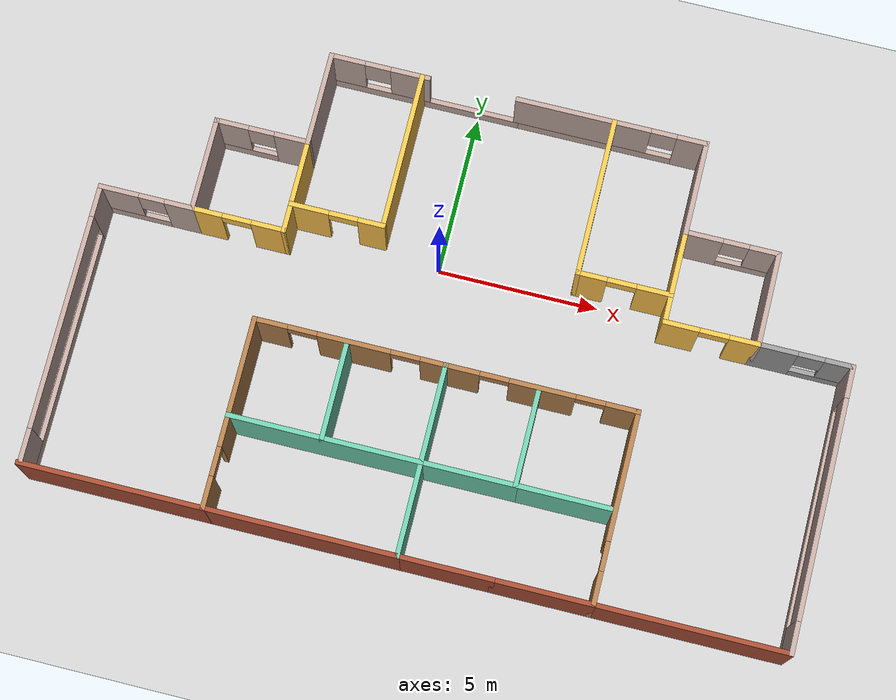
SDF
<sdf version="1.6">
 <world name="default">
  <model name="ground_plane">
   <static>1</static>
   <link name="link">
    <collision name="collision">
     <geometry><plane><normal>0 0 1</normal><size>100 100</size></plane></geometry>
     <surface><friction><ode><mu>100</mu><mu2>50</mu2></ode></friction></surface>
    </collision>
    <visual name="visual">
     <cast_shadows>0</cast_shadows>
     <geometry><plane><normal>0 0 1</normal><size>100 100</size></plane></geometry>
     <material>
      <script><uri>file://media/materials/scripts/gazebo.material</uri><name>Gazebo/Grey</name></script>
     </material>
    </visual>
   </link>
  </model>
  <model name="model">
   <pose>1.15631 -2.02107 0 0 -0 0</pose>
   <link name="Wall_11">
    <pose>2.95 7.2 0 0 -0 3.14159</pose>
    <visual name="Wall_11_Visual_0">
     <pose>-2.50774 0 1.25 0 -0 0</pose>
     <geometry><box><size>0.98451 0.15 2.5</size></box></geometry>
     <material>
      <script><uri>file://media/materials/scripts/gazebo.material</uri><name>Gazebo/Grey</name></script>
      <ambient>0.760784 0.662745 0.627451 1</ambient>
     </material>
     <meta><layer>0</layer></meta>
    </visual>
    <collision name="Wall_11_Collision_0">
     <geometry><box><size>0.98451 0.15 2.5</size></box></geometry>
     <pose>-2.50774 0 1.25 0 -0 0</pose>
    </collision>
    <visual name="Wall_11_Visual_1">
     <pose>0.492255 0 0.25 0 -0 0</pose>
     <geometry><box><size>5.01549 0.15 0.5</size></box></geometry>
     <material>
      <script><uri>file://media/materials/scripts/gazebo.material</uri><name>Gazebo/Grey</name></script>
      <ambient>0.760784 0.662745 0.627451 1</ambient>
     </material>
     <meta><layer>0</layer></meta>
    </visual>
    <collision name="Wall_11_Collision_1">
     <geometry><box><size>5.01549 0.15 0.5</size></box></geometry>
     <pose>0.492255 0 0.25 0 -0 0</pose>
    </collision>
    <visual name="Wall_11_Visual_2">
     <pose>0.892255 0 1.5 0 -0 0</pose>
     <geometry><box><size>4.21549 0.15 2</size></box></geometry>
     <material>
      <script><uri>file://media/materials/scripts/gazebo.material</uri><name>Gazebo/Grey</name></script>
      <ambient>0.760784 0.662745 0.627451 1</ambient>
     </material>
     <meta><layer>0</layer></meta>
    </visual>
    <collision name="Wall_11_Collision_2">
     <geometry><box><size>4.21549 0.15 2</size></box></geometry>
     <pose>0.892255 0 1.5 0 -0 0</pose>
    </collision>
    <visual name="Wall_11_Visual_3">
     <pose>-1.61549 0 1.9 0 -0 0</pose>
     <geometry><box><size>0.8 0.15 1.2</size></box></geometry>
     <material>
      <script><uri>file://media/materials/scripts/gazebo.material</uri><name>Gazebo/Grey</name></script>
      <ambient>0.760784 0.662745 0.627451 1</ambient>
     </material>
     <meta><layer>0</layer></meta>
    </visual>
    <collision name="Wall_11_Collision_3">
     <geometry><box><size>0.8 0.15 1.2</size></box></geometry>
     <pose>-1.61549 0 1.9 0 -0 0</pose>
    </collision>
   </link>
   <link name="Wall_16">
    <collision name="Wall_16_Collision">
     <geometry><box><size>3 0.15 2.5</size></box></geometry>
     <pose>0 0 1.25 0 -0 0</pose>
    </collision>
    <visual name="Wall_16_Visual">
     <pose>0 0 1.25 0 -0 0</pose>
     <geometry><box><size>3 0.15 2.5</size></box></geometry>
     <material>
      <script><uri>file://media/materials/scripts/gazebo.material</uri><name>Gazebo/Grey</name></script>
      <ambient>0.760784 0.662745 0.627451 1</ambient>
     </material>
     <meta><layer>0</layer></meta>
    </visual>
    <pose>5.875 5.775 0 0 -0 -1.5708</pose>
   </link>
   <link name="Wall_17">
    <pose>7.3 4.35 0 0 -0 0</pose>
    <visual name="Wall_17_Visual_0">
     <pose>-0.888143 0 1.25 0 -0 0</pose>
     <geometry><box><size>1.22371 0.15 2.5</size></box></geometry>
     <material>
      <script><uri>file://media/materials/scripts/gazebo.material</uri><name>Gazebo/Grey</name></script>
      <ambient>0.760784 0.662745 0.627451 1</ambient>
     </material>
     <meta><layer>0</layer></meta>
    </visual>
    <collision name="Wall_17_Collision_0">
     <geometry><box><size>1.22371 0.15 2.5</size></box></geometry>
     <pose>-0.888143 0 1.25 0 -0 0</pose>
    </collision>
    <visual name="Wall_17_Visual_1">
     <pose>0.611857 0 0.25 0 -0 0</pose>
     <geometry><box><size>1.77629 0.15 0.5</size></box></geometry>
     <material>
      <script><uri>file://media/materials/scripts/gazebo.material</uri><name>Gazebo/Grey</name></script>
      <ambient>0.760784 0.662745 0.627451 1</ambient>
     </material>
     <meta><layer>0</layer></meta>
    </visual>
    <collision name="Wall_17_Collision_1">
     <geometry><box><size>1.77629 0.15 0.5</size></box></geometry>
     <pose>0.611857 0 0.25 0 -0 0</pose>
    </collision>
    <visual name="Wall_17_Visual_2">
     <pose>1.01186 0 1.5 0 -0 0</pose>
     <geometry><box><size>0.976287 0.15 2</size></box></geometry>
     <material>
      <script><uri>file://media/materials/scripts/gazebo.material</uri><name>Gazebo/Grey</name></script>
      <ambient>0.760784 0.662745 0.627451 1</ambient>
     </material>
     <meta><layer>0</layer></meta>
    </visual>
    <collision name="Wall_17_Collision_2">
     <geometry><box><size>0.976287 0.15 2</size></box></geometry>
     <pose>1.01186 0 1.5 0 -0 0</pose>
    </collision>
    <visual name="Wall_17_Visual_3">
     <pose>0.123713 0 1.9 0 -0 0</pose>
     <geometry><box><size>0.8 0.15 1.2</size></box></geometry>
     <material>
      <script><uri>file://media/materials/scripts/gazebo.material</uri><name>Gazebo/Grey</name></script>
      <ambient>0.760784 0.662745 0.627451 1</ambient>
     </material>
     <meta><layer>0</layer></meta>
    </visual>
    <collision name="Wall_17_Collision_3">
     <geometry><box><size>0.8 0.15 1.2</size></box></geometry>
     <pose>0.123713 0 1.9 0 -0 0</pose>
    </collision>
   </link>
   <link name="Wall_18">
    <collision name="Wall_18_Collision">
     <geometry><box><size>3 0.15 2.5</size></box></geometry>
     <pose>0 0 1.25 0 -0 0</pose>
    </collision>
    <visual name="Wall_18_Visual">
     <pose>0 0 1.25 0 -0 0</pose>
     <geometry><box><size>3 0.15 2.5</size></box></geometry>
     <material>
      <script><uri>file://media/materials/scripts/gazebo.material</uri><name>Gazebo/Grey</name></script>
      <ambient>0.760784 0.662745 0.627451 1</ambient>
     </material>
     <meta><layer>0</layer></meta>
    </visual>
    <pose>8.725 2.925 0 0 -0 -1.5708</pose>
   </link>
   <link name="Wall_19">
    <pose>10.15 1.5 0 0 -0 0</pose>
    <visual name="Wall_19_Visual_0">
     <pose>-0.863411 0 1.25 0 -0 0</pose>
     <geometry><box><size>1.27318 0.15 2.5</size></box></geometry>
     <material>
      <script><uri>file://media/materials/scripts/gazebo.material</uri><name>Gazebo/Grey</name></script>
      <ambient>1 1 1 1</ambient>
     </material>
     <meta><layer>0</layer></meta>
    </visual>
    <collision name="Wall_19_Collision_0">
     <geometry><box><size>1.27318 0.15 2.5</size></box></geometry>
     <pose>-0.863411 0 1.25 0 -0 0</pose>
    </collision>
    <visual name="Wall_19_Visual_1">
     <pose>0.636589 0 0.25 0 -0 0</pose>
     <geometry><box><size>1.72682 0.15 0.5</size></box></geometry>
     <material>
      <script><uri>file://media/materials/scripts/gazebo.material</uri><name>Gazebo/Grey</name></script>
      <ambient>1 1 1 1</ambient>
     </material>
     <meta><layer>0</layer></meta>
    </visual>
    <collision name="Wall_19_Collision_1">
     <geometry><box><size>1.72682 0.15 0.5</size></box></geometry>
     <pose>0.636589 0 0.25 0 -0 0</pose>
    </collision>
    <visual name="Wall_19_Visual_2">
     <pose>1.03659 0 1.5 0 -0 0</pose>
     <geometry><box><size>0.926822 0.15 2</size></box></geometry>
     <material>
      <script><uri>file://media/materials/scripts/gazebo.material</uri><name>Gazebo/Grey</name></script>
      <ambient>1 1 1 1</ambient>
     </material>
     <meta><layer>0</layer></meta>
    </visual>
    <collision name="Wall_19_Collision_2">
     <geometry><box><size>0.926822 0.15 2</size></box></geometry>
     <pose>1.03659 0 1.5 0 -0 0</pose>
    </collision>
    <visual name="Wall_19_Visual_3">
     <pose>0.173178 0 1.9 0 -0 0</pose>
     <geometry><box><size>0.8 0.15 1.2</size></box></geometry>
     <material>
      <script><uri>file://media/materials/scripts/gazebo.material</uri><name>Gazebo/Grey</name></script>
      <ambient>1 1 1 1</ambient>
     </material>
     <meta><layer>0</layer></meta>
    </visual>
    <collision name="Wall_19_Collision_3">
     <geometry><box><size>0.8 0.15 1.2</size></box></geometry>
     <pose>0.173178 0 1.9 0 -0 0</pose>
    </collision>
   </link>
   <link name="Wall_21">
    <collision name="Wall_21_Collision">
     <geometry><box><size>3 0.15 2.5</size></box></geometry>
     <pose>0 0 1.25 0 -0 0</pose>
    </collision>
    <visual name="Wall_21_Visual">
     <pose>0 0 1.25 0 -0 0</pose>
     <geometry><box><size>3 0.15 2.5</size></box></geometry>
     <material>
      <script><uri>file://media/materials/scripts/gazebo.material</uri><name>Gazebo/Grey</name></script>
      <ambient>1 0.764706 0.305882 1</ambient>
     </material>
     <meta><layer>0</layer></meta>
    </visual>
    <pose>5.875 2.925 0 0 -0 -1.5708</pose>
   </link>
   <link name="Wall_22">
    <pose>7.3 1.5 0 0 -0 0</pose>
    <visual name="Wall_22_Visual_0">
     <pose>-0.931281 0 1.25 0 -0 0</pose>
     <geometry><box><size>1.13744 0.15 2.5</size></box></geometry>
     <material>
      <script><uri>file://media/materials/scripts/gazebo.material</uri><name>Gazebo/Grey</name></script>
      <ambient>1 0.764706 0.305882 1</ambient>
     </material>
     <meta><layer>0</layer></meta>
    </visual>
    <collision name="Wall_22_Collision_0">
     <geometry><box><size>1.13744 0.15 2.5</size></box></geometry>
     <pose>-0.931281 0 1.25 0 -0 0</pose>
    </collision>
    <visual name="Wall_22_Visual_1">
     <pose>1.01872 0 1.25 0 -0 0</pose>
     <geometry><box><size>0.962562 0.15 2.5</size></box></geometry>
     <material>
      <script><uri>file://media/materials/scripts/gazebo.material</uri><name>Gazebo/Grey</name></script>
      <ambient>1 0.764706 0.305882 1</ambient>
     </material>
     <meta><layer>0</layer></meta>
    </visual>
    <collision name="Wall_22_Collision_1">
     <geometry><box><size>0.962562 0.15 2.5</size></box></geometry>
     <pose>1.01872 0 1.25 0 -0 0</pose>
    </collision>
    <visual name="Wall_22_Visual_2">
     <pose>0.087438 0 2.25 0 -0 0</pose>
     <geometry><box><size>0.9 0.15 0.5</size></box></geometry>
     <material>
      <script><uri>file://media/materials/scripts/gazebo.material</uri><name>Gazebo/Grey</name></script>
      <ambient>1 0.764706 0.305882 1</ambient>
     </material>
     <meta><layer>0</layer></meta>
    </visual>
    <collision name="Wall_22_Collision_2">
     <geometry><box><size>0.9 0.15 0.5</size></box></geometry>
     <pose>0.087438 0 2.25 0 -0 0</pose>
    </collision>
   </link>
   <link name="Wall_25">
    <collision name="Wall_25_Collision">
     <geometry><box><size>5 0.15 2.5</size></box></geometry>
     <pose>0 0 1.25 0 -0 0</pose>
    </collision>
    <visual name="Wall_25_Visual">
     <pose>0 0 1.25 0 -0 0</pose>
     <geometry><box><size>5 0.15 2.5</size></box></geometry>
     <material>
      <script><uri>file://media/materials/scripts/gazebo.material</uri><name>Gazebo/Grey</name></script>
      <ambient>1 0.764706 0.305882 1</ambient>
     </material>
     <meta><layer>0</layer></meta>
    </visual>
    <pose>3.025 4.775 0 0 -0 -1.5708</pose>
   </link>
   <link name="Wall_26">
    <pose>4.45 2.35 0 0 -0 0</pose>
    <visual name="Wall_26_Visual_0">
     <pose>-1.01278 0 1.25 0 -0 0</pose>
     <geometry><box><size>0.974438 0.15 2.5</size></box></geometry>
     <material>
      <script><uri>file://media/materials/scripts/gazebo.material</uri><name>Gazebo/Grey</name></script>
      <ambient>1 0.764706 0.305882 1</ambient>
     </material>
     <meta><layer>0</layer></meta>
    </visual>
    <collision name="Wall_26_Collision_0">
     <geometry><box><size>0.974438 0.15 2.5</size></box></geometry>
     <pose>-1.01278 0 1.25 0 -0 0</pose>
    </collision>
    <visual name="Wall_26_Visual_1">
     <pose>0.937219 0 1.25 0 -0 0</pose>
     <geometry><box><size>1.12556 0.15 2.5</size></box></geometry>
     <material>
      <script><uri>file://media/materials/scripts/gazebo.material</uri><name>Gazebo/Grey</name></script>
      <ambient>1 0.764706 0.305882 1</ambient>
     </material>
     <meta><layer>0</layer></meta>
    </visual>
    <collision name="Wall_26_Collision_1">
     <geometry><box><size>1.12556 0.15 2.5</size></box></geometry>
     <pose>0.937219 0 1.25 0 -0 0</pose>
    </collision>
    <visual name="Wall_26_Visual_2">
     <pose>-0.075562 0 2.25 0 -0 0</pose>
     <geometry><box><size>0.9 0.15 0.5</size></box></geometry>
     <material>
      <script><uri>file://media/materials/scripts/gazebo.material</uri><name>Gazebo/Grey</name></script>
      <ambient>1 0.764706 0.305882 1</ambient>
     </material>
     <meta><layer>0</layer></meta>
    </visual>
    <collision name="Wall_26_Collision_2">
     <geometry><box><size>0.9 0.15 0.5</size></box></geometry>
     <pose>-0.075562 0 2.25 0 -0 0</pose>
    </collision>
   </link>
   <link name="Wall_32">
    <collision name="Wall_32_Collision">
     <geometry><box><size>6 0.15 2.5</size></box></geometry>
     <pose>0 0 1.25 0 -0 0</pose>
    </collision>
    <visual name="Wall_32_Visual">
     <pose>0 0 1.25 0 -0 0</pose>
     <geometry><box><size>6 0.15 2.5</size></box></geometry>
     <material>
      <script><uri>file://media/materials/scripts/gazebo.material</uri><name>Gazebo/Bricks</name></script>
      <ambient>1 1 1 1</ambient>
     </material>
     <meta><layer>0</layer></meta>
    </visual>
    <pose>8.65 -7.2 0 0 -0 3.14159</pose>
   </link>
   <link name="Wall_34">
    <pose>5.725 -4.275 0 0 -0 1.5708</pose>
    <visual name="Wall_34_Visual_0">
     <pose>-2.46394 0 1.25 0 -0 0</pose>
     <geometry><box><size>1.07212 0.15 2.5</size></box></geometry>
     <material>
      <script><uri>file://media/materials/scripts/gazebo.material</uri><name>Gazebo/Wood</name></script>
      <ambient>1 1 1 1</ambient>
     </material>
     <meta><layer>0</layer></meta>
    </visual>
    <collision name="Wall_34_Collision_0">
     <geometry><box><size>1.07212 0.15 2.5</size></box></geometry>
     <pose>-2.46394 0 1.25 0 -0 0</pose>
    </collision>
    <visual name="Wall_34_Visual_1">
     <pose>0.986061 0 1.25 0 -0 0</pose>
     <geometry><box><size>4.02788 0.15 2.5</size></box></geometry>
     <material>
      <script><uri>file://media/materials/scripts/gazebo.material</uri><name>Gazebo/Wood</name></script>
      <ambient>1 1 1 1</ambient>
     </material>
     <meta><layer>0</layer></meta>
    </visual>
    <collision name="Wall_34_Collision_1">
     <geometry><box><size>4.02788 0.15 2.5</size></box></geometry>
     <pose>0.986061 0 1.25 0 -0 0</pose>
    </collision>
    <visual name="Wall_34_Visual_2">
     <pose>-1.47788 0 2.25 0 -0 0</pose>
     <geometry><box><size>0.9 0.15 0.5</size></box></geometry>
     <material>
      <script><uri>file://media/materials/scripts/gazebo.material</uri><name>Gazebo/Wood</name></script>
      <ambient>1 1 1 1</ambient>
     </material>
     <meta><layer>0</layer></meta>
    </visual>
    <collision name="Wall_34_Collision_2">
     <geometry><box><size>0.9 0.15 0.5</size></box></geometry>
     <pose>-1.47788 0 2.25 0 -0 0</pose>
    </collision>
   </link>
   <link name="Wall_35">
    <pose>2.8 -1.35 0 0 -0 3.14159</pose>
    <visual name="Wall_35_Visual_0">
     <pose>-2.46622 0 1.25 0 -0 0</pose>
     <geometry><box><size>1.06756 0.15 2.5</size></box></geometry>
     <material>
      <script><uri>file://media/materials/scripts/gazebo.material</uri><name>Gazebo/Wood</name></script>
      <ambient>1 1 1 1</ambient>
     </material>
     <meta><layer>0</layer></meta>
    </visual>
    <collision name="Wall_35_Collision_0">
     <geometry><box><size>1.06756 0.15 2.5</size></box></geometry>
     <pose>-2.46622 0 1.25 0 -0 0</pose>
    </collision>
    <visual name="Wall_35_Visual_1">
     <pose>-0.021938 0 1.25 0 -0 0</pose>
     <geometry><box><size>2.021 0.15 2.5</size></box></geometry>
     <material>
      <script><uri>file://media/materials/scripts/gazebo.material</uri><name>Gazebo/Wood</name></script>
      <ambient>1 1 1 1</ambient>
     </material>
     <meta><layer>0</layer></meta>
    </visual>
    <collision name="Wall_35_Collision_1">
     <geometry><box><size>2.021 0.15 2.5</size></box></geometry>
     <pose>-0.021938 0 1.25 0 -0 0</pose>
    </collision>
    <visual name="Wall_35_Visual_2">
     <pose>2.44428 0 1.25 0 -0 0</pose>
     <geometry><box><size>1.11144 0.15 2.5</size></box></geometry>
     <material>
      <script><uri>file://media/materials/scripts/gazebo.material</uri><name>Gazebo/Wood</name></script>
      <ambient>1 1 1 1</ambient>
     </material>
     <meta><layer>0</layer></meta>
    </visual>
    <collision name="Wall_35_Collision_2">
     <geometry><box><size>1.11144 0.15 2.5</size></box></geometry>
     <pose>2.44428 0 1.25 0 -0 0</pose>
    </collision>
    <visual name="Wall_35_Visual_3">
     <pose>-1.48244 0 2.25 0 -0 0</pose>
     <geometry><box><size>0.9 0.15 0.5</size></box></geometry>
     <material>
      <script><uri>file://media/materials/scripts/gazebo.material</uri><name>Gazebo/Wood</name></script>
      <ambient>1 1 1 1</ambient>
     </material>
     <meta><layer>0</layer></meta>
    </visual>
    <collision name="Wall_35_Collision_3">
     <geometry><box><size>0.9 0.15 0.5</size></box></geometry>
     <pose>-1.48244 0 2.25 0 -0 0</pose>
    </collision>
    <visual name="Wall_35_Visual_4">
     <pose>1.43856 0 2.25 0 -0 0</pose>
     <geometry><box><size>0.9 0.15 0.5</size></box></geometry>
     <material>
      <script><uri>file://media/materials/scripts/gazebo.material</uri><name>Gazebo/Wood</name></script>
      <ambient>1 1 1 1</ambient>
     </material>
     <meta><layer>0</layer></meta>
    </visual>
    <collision name="Wall_35_Collision_4">
     <geometry><box><size>0.9 0.15 0.5</size></box></geometry>
     <pose>1.43856 0 2.25 0 -0 0</pose>
    </collision>
   </link>
   <link name="Wall_36">
    <collision name="Wall_36_Collision">
     <geometry><box><size>6 0.15 2.5</size></box></geometry>
     <pose>0 0 1.25 0 -0 0</pose>
    </collision>
    <visual name="Wall_36_Visual">
     <pose>0 0 1.25 0 -0 0</pose>
     <geometry><box><size>6 0.15 2.5</size></box></geometry>
     <material>
      <script><uri>file://media/materials/scripts/gazebo.material</uri><name>Gazebo/Grey</name></script>
      <ambient>0.435294 0.796078 0.67451 1</ambient>
     </material>
     <meta><layer>0</layer></meta>
    </visual>
    <pose>-0.125001 -4.275 0 0 -0 -1.5708</pose>
   </link>
   <link name="Wall_37">
    <collision name="Wall_37_Collision">
     <geometry><box><size>3 0.15 2.5</size></box></geometry>
     <pose>0 0 1.25 0 -0 0</pose>
    </collision>
    <visual name="Wall_37_Visual">
     <pose>0 0 1.25 0 -0 0</pose>
     <geometry><box><size>3 0.15 2.5</size></box></geometry>
     <material>
      <script><uri>file://media/materials/scripts/gazebo.material</uri><name>Gazebo/Bricks</name></script>
      <ambient>1 1 1 1</ambient>
     </material>
     <meta><layer>0</layer></meta>
    </visual>
    <pose>1.3 -7.2 0 0 -0 0</pose>
   </link>
   <link name="Wall_39">
    <collision name="Wall_39_Collision">
     <geometry><box><size>3 0.15 2.5</size></box></geometry>
     <pose>0 0 1.25 0 -0 0</pose>
    </collision>
    <visual name="Wall_39_Visual">
     <pose>0 0 1.25 0 -0 0</pose>
     <geometry><box><size>3 0.15 2.5</size></box></geometry>
     <material>
      <script><uri>file://media/materials/scripts/gazebo.material</uri><name>Gazebo/Grey</name></script>
      <ambient>0.435294 0.796078 0.67451 1</ambient>
     </material>
     <meta><layer>0</layer></meta>
    </visual>
    <pose>1.3 -4.35 0 0 -0 3.14159</pose>
   </link>
   <link name="Wall_41">
    <collision name="Wall_41_Collision">
     <geometry><box><size>3 0.15 2.5</size></box></geometry>
     <pose>0 0 1.25 0 -0 0</pose>
    </collision>
    <visual name="Wall_41_Visual">
     <pose>0 0 1.25 0 -0 0</pose>
     <geometry><box><size>3 0.15 2.5</size></box></geometry>
     <material>
      <script><uri>file://media/materials/scripts/gazebo.material</uri><name>Gazebo/Grey</name></script>
      <ambient>0.435294 0.796078 0.67451 1</ambient>
     </material>
     <meta><layer>0</layer></meta>
    </visual>
    <pose>2.725 -2.925 0 0 -0 1.5708</pose>
   </link>
   <link name="Wall_43">
    <collision name="Wall_43_Collision">
     <geometry><box><size>3 0.15 2.5</size></box></geometry>
     <pose>0 0 1.25 0 -0 0</pose>
    </collision>
    <visual name="Wall_43_Visual">
     <pose>0 0 1.25 0 -0 0</pose>
     <geometry><box><size>3 0.15 2.5</size></box></geometry>
     <material>
      <script><uri>file://media/materials/scripts/gazebo.material</uri><name>Gazebo/Grey</name></script>
      <ambient>0.435294 0.796078 0.67451 1</ambient>
     </material>
     <meta><layer>0</layer></meta>
    </visual>
    <pose>4.15 -4.35 0 0 -0 0</pose>
   </link>
   <link name="Wall_45">
    <collision name="Wall_45_Collision">
     <geometry><box><size>3.15 0.15 2.5</size></box></geometry>
     <pose>0 0 1.25 0 -0 0</pose>
    </collision>
    <visual name="Wall_45_Visual">
     <pose>0 0 1.25 0 -0 0</pose>
     <geometry><box><size>3.15 0.15 2.5</size></box></geometry>
     <material>
      <script><uri>file://media/materials/scripts/gazebo.material</uri><name>Gazebo/Bricks</name></script>
      <ambient>1 1 1 1</ambient>
     </material>
     <meta><layer>0</layer></meta>
    </visual>
    <pose>4.225 -7.2 0 0 -0 0</pose>
   </link>
   <link name="Wall_47">
    <collision name="Wall_47_Collision">
     <geometry><box><size>6 0.15 2.5</size></box></geometry>
     <pose>0 0 1.25 0 -0 0</pose>
    </collision>
    <visual name="Wall_47_Visual">
     <pose>0 0 1.25 0 -0 0</pose>
     <geometry><box><size>6 0.15 2.5</size></box></geometry>
     <material>
      <script><uri>file://media/materials/scripts/gazebo.material</uri><name>Gazebo/Bricks</name></script>
      <ambient>1 1 1 1</ambient>
     </material>
     <meta><layer>0</layer></meta>
    </visual>
    <pose>-3.05 -7.2 0 0 -0 3.14159</pose>
   </link>
   <link name="Wall_48">
    <pose>-5.975 -4.275 0 0 -0 1.5708</pose>
    <visual name="Wall_48_Visual_0">
     <pose>-2.47544 0 1.25 0 -0 0</pose>
     <geometry><box><size>1.04912 0.15 2.5</size></box></geometry>
     <material>
      <script><uri>file://media/materials/scripts/gazebo.material</uri><name>Gazebo/Wood</name></script>
      <ambient>1 1 1 1</ambient>
     </material>
     <meta><layer>0</layer></meta>
    </visual>
    <collision name="Wall_48_Collision_0">
     <geometry><box><size>1.04912 0.15 2.5</size></box></geometry>
     <pose>-2.47544 0 1.25 0 -0 0</pose>
    </collision>
    <visual name="Wall_48_Visual_1">
     <pose>0.974561 0 1.25 0 -0 0</pose>
     <geometry><box><size>4.05088 0.15 2.5</size></box></geometry>
     <material>
      <script><uri>file://media/materials/scripts/gazebo.material</uri><name>Gazebo/Wood</name></script>
      <ambient>1 1 1 1</ambient>
     </material>
     <meta><layer>0</layer></meta>
    </visual>
    <collision name="Wall_48_Collision_1">
     <geometry><box><size>4.05088 0.15 2.5</size></box></geometry>
     <pose>0.974561 0 1.25 0 -0 0</pose>
    </collision>
    <visual name="Wall_48_Visual_2">
     <pose>-1.50088 0 2.25 0 -0 0</pose>
     <geometry><box><size>0.9 0.15 0.5</size></box></geometry>
     <material>
      <script><uri>file://media/materials/scripts/gazebo.material</uri><name>Gazebo/Wood</name></script>
      <ambient>1 1 1 1</ambient>
     </material>
     <meta><layer>0</layer></meta>
    </visual>
    <collision name="Wall_48_Collision_2">
     <geometry><box><size>0.9 0.15 0.5</size></box></geometry>
     <pose>-1.50088 0 2.25 0 -0 0</pose>
    </collision>
   </link>
   <link name="Wall_49">
    <pose>-3.05 -1.35 0 0 -0 0</pose>
    <visual name="Wall_49_Visual_0">
     <pose>-2.45178 0 1.25 0 -0 0</pose>
     <geometry><box><size>1.09644 0.15 2.5</size></box></geometry>
     <material>
      <script><uri>file://media/materials/scripts/gazebo.material</uri><name>Gazebo/Wood</name></script>
      <ambient>1 1 1 1</ambient>
     </material>
     <meta><layer>0</layer></meta>
    </visual>
    <collision name="Wall_49_Collision_0">
     <geometry><box><size>1.09644 0.15 2.5</size></box></geometry>
     <pose>-2.45178 0 1.25 0 -0 0</pose>
    </collision>
    <visual name="Wall_49_Visual_1">
     <pose>0.121938 0 1.25 0 -0 0</pose>
     <geometry><box><size>2.251 0.15 2.5</size></box></geometry>
     <material>
      <script><uri>file://media/materials/scripts/gazebo.material</uri><name>Gazebo/Wood</name></script>
      <ambient>1 1 1 1</ambient>
     </material>
     <meta><layer>0</layer></meta>
    </visual>
    <collision name="Wall_49_Collision_1">
     <geometry><box><size>2.251 0.15 2.5</size></box></geometry>
     <pose>0.121938 0 1.25 0 -0 0</pose>
    </collision>
    <visual name="Wall_49_Visual_2">
     <pose>2.57372 0 1.25 0 -0 0</pose>
     <geometry><box><size>0.852562 0.15 2.5</size></box></geometry>
     <material>
      <script><uri>file://media/materials/scripts/gazebo.material</uri><name>Gazebo/Wood</name></script>
      <ambient>1 1 1 1</ambient>
     </material>
     <meta><layer>0</layer></meta>
    </visual>
    <collision name="Wall_49_Collision_2">
     <geometry><box><size>0.852562 0.15 2.5</size></box></geometry>
     <pose>2.57372 0 1.25 0 -0 0</pose>
    </collision>
    <visual name="Wall_49_Visual_3">
     <pose>-1.45356 0 2.25 0 -0 0</pose>
     <geometry><box><size>0.9 0.15 0.5</size></box></geometry>
     <material>
      <script><uri>file://media/materials/scripts/gazebo.material</uri><name>Gazebo/Wood</name></script>
      <ambient>1 1 1 1</ambient>
     </material>
     <meta><layer>0</layer></meta>
    </visual>
    <collision name="Wall_49_Collision_3">
     <geometry><box><size>0.9 0.15 0.5</size></box></geometry>
     <pose>-1.45356 0 2.25 0 -0 0</pose>
    </collision>
    <visual name="Wall_49_Visual_4">
     <pose>1.69744 0 2.25 0 -0 0</pose>
     <geometry><box><size>0.9 0.15 0.5</size></box></geometry>
     <material>
      <script><uri>file://media/materials/scripts/gazebo.material</uri><name>Gazebo/Wood</name></script>
      <ambient>1 1 1 1</ambient>
     </material>
     <meta><layer>0</layer></meta>
    </visual>
    <collision name="Wall_49_Collision_4">
     <geometry><box><size>0.9 0.15 0.5</size></box></geometry>
     <pose>1.69744 0 2.25 0 -0 0</pose>
    </collision>
   </link>
   <link name="Wall_51">
    <collision name="Wall_51_Collision">
     <geometry><box><size>6 0.15 2.5</size></box></geometry>
     <pose>0 0 1.25 0 -0 0</pose>
    </collision>
    <visual name="Wall_51_Visual">
     <pose>0 0 1.25 0 -0 0</pose>
     <geometry><box><size>6 0.15 2.5</size></box></geometry>
     <material>
      <script><uri>file://media/materials/scripts/gazebo.material</uri><name>Gazebo/Grey</name></script>
      <ambient>0.435294 0.796078 0.67451 1</ambient>
     </material>
     <meta><layer>0</layer></meta>
    </visual>
    <pose>-3.05 -4.35 0 0 -0 3.14159</pose>
   </link>
   <link name="Wall_54">
    <collision name="Wall_54_Collision">
     <geometry><box><size>3 0.15 2.5</size></box></geometry>
     <pose>0 0 1.25 0 -0 0</pose>
    </collision>
    <visual name="Wall_54_Visual">
     <pose>0 0 1.25 0 -0 0</pose>
     <geometry><box><size>3 0.15 2.5</size></box></geometry>
     <material>
      <script><uri>file://media/materials/scripts/gazebo.material</uri><name>Gazebo/Grey</name></script>
      <ambient>0.435294 0.796078 0.67451 1</ambient>
     </material>
     <meta><layer>0</layer></meta>
    </visual>
    <pose>-3.125 -2.925 0 0 -0 1.5708</pose>
   </link>
   <link name="Wall_71">
    <pose>-2.9 7.2 0 0 -0 3.14159</pose>
    <visual name="Wall_71_Visual_0">
     <pose>0 0 0.25 0 -0 0</pose>
     <geometry><box><size>6 0.15 0.5</size></box></geometry>
     <material>
      <script><uri>file://media/materials/scripts/gazebo.material</uri><name>Gazebo/Grey</name></script>
      <ambient>0.760784 0.662745 0.627451 1</ambient>
     </material>
     <meta><layer>0</layer></meta>
    </visual>
    <collision name="Wall_71_Collision_0">
     <geometry><box><size>6 0.15 0.5</size></box></geometry>
     <pose>0 0 0.25 0 -0 0</pose>
    </collision>
    <visual name="Wall_71_Visual_1">
     <pose>0.436212 0 1.5 0 -0 0</pose>
     <geometry><box><size>1.24159 0.15 2</size></box></geometry>
     <material>
      <script><uri>file://media/materials/scripts/gazebo.material</uri><name>Gazebo/Grey</name></script>
      <ambient>0.760784 0.662745 0.627451 1</ambient>
     </material>
     <meta><layer>0</layer></meta>
    </visual>
    <collision name="Wall_71_Collision_1">
     <geometry><box><size>1.24159 0.15 2</size></box></geometry>
     <pose>0.436212 0 1.5 0 -0 0</pose>
    </collision>
    <visual name="Wall_71_Visual_2">
     <pose>2.4285 0 1.5 0 -0 0</pose>
     <geometry><box><size>1.14299 0.15 2</size></box></geometry>
     <material>
      <script><uri>file://media/materials/scripts/gazebo.material</uri><name>Gazebo/Grey</name></script>
      <ambient>0.760784 0.662745 0.627451 1</ambient>
     </material>
     <meta><layer>0</layer></meta>
    </visual>
    <collision name="Wall_71_Collision_2">
     <geometry><box><size>1.14299 0.15 2</size></box></geometry>
     <pose>2.4285 0 1.5 0 -0 0</pose>
    </collision>
    <visual name="Wall_71_Visual_3">
     <pose>1.45701 0 1.9 0 -0 0</pose>
     <geometry><box><size>0.8 0.15 1.2</size></box></geometry>
     <material>
      <script><uri>file://media/materials/scripts/gazebo.material</uri><name>Gazebo/Grey</name></script>
      <ambient>0.760784 0.662745 0.627451 1</ambient>
     </material>
     <meta><layer>0</layer></meta>
    </visual>
    <collision name="Wall_71_Collision_3">
     <geometry><box><size>0.8 0.15 1.2</size></box></geometry>
     <pose>1.45701 0 1.9 0 -0 0</pose>
    </collision>
   </link>
   <link name="Wall_72">
    <collision name="Wall_72_Collision">
     <geometry><box><size>3 0.15 2.5</size></box></geometry>
     <pose>0 0 1.25 0 -0 0</pose>
    </collision>
    <visual name="Wall_72_Visual">
     <pose>0 0 1.25 0 -0 0</pose>
     <geometry><box><size>3 0.15 2.5</size></box></geometry>
     <material>
      <script><uri>file://media/materials/scripts/gazebo.material</uri><name>Gazebo/Grey</name></script>
      <ambient>0.760784 0.662745 0.627451 1</ambient>
     </material>
     <meta><layer>0</layer></meta>
    </visual>
    <pose>-5.825 5.775 0 0 -0 -1.5708</pose>
   </link>
   <link name="Wall_74">
    <pose>-7.25 4.35 0 0 -0 3.14159</pose>
    <visual name="Wall_74_Visual_0">
     <pose>-0.93714 0 1.25 0 -0 0</pose>
     <geometry><box><size>1.12572 0.15 2.5</size></box></geometry>
     <material>
      <script><uri>file://media/materials/scripts/gazebo.material</uri><name>Gazebo/Grey</name></script>
      <ambient>0.760784 0.662745 0.627451 1</ambient>
     </material>
     <meta><layer>0</layer></meta>
    </visual>
    <collision name="Wall_74_Collision_0">
     <geometry><box><size>1.12572 0.15 2.5</size></box></geometry>
     <pose>-0.93714 0 1.25 0 -0 0</pose>
    </collision>
    <visual name="Wall_74_Visual_1">
     <pose>0.56286 0 0.25 0 -0 0</pose>
     <geometry><box><size>1.87428 0.15 0.5</size></box></geometry>
     <material>
      <script><uri>file://media/materials/scripts/gazebo.material</uri><name>Gazebo/Grey</name></script>
      <ambient>0.760784 0.662745 0.627451 1</ambient>
     </material>
     <meta><layer>0</layer></meta>
    </visual>
    <collision name="Wall_74_Collision_1">
     <geometry><box><size>1.87428 0.15 0.5</size></box></geometry>
     <pose>0.56286 0 0.25 0 -0 0</pose>
    </collision>
    <visual name="Wall_74_Visual_2">
     <pose>0.96286 0 1.5 0 -0 0</pose>
     <geometry><box><size>1.07428 0.15 2</size></box></geometry>
     <material>
      <script><uri>file://media/materials/scripts/gazebo.material</uri><name>Gazebo/Grey</name></script>
      <ambient>0.760784 0.662745 0.627451 1</ambient>
     </material>
     <meta><layer>0</layer></meta>
    </visual>
    <collision name="Wall_74_Collision_2">
     <geometry><box><size>1.07428 0.15 2</size></box></geometry>
     <pose>0.96286 0 1.5 0 -0 0</pose>
    </collision>
    <visual name="Wall_74_Visual_3">
     <pose>0.025721 0 1.9 0 -0 0</pose>
     <geometry><box><size>0.8 0.15 1.2</size></box></geometry>
     <material>
      <script><uri>file://media/materials/scripts/gazebo.material</uri><name>Gazebo/Grey</name></script>
      <ambient>0.760784 0.662745 0.627451 1</ambient>
     </material>
     <meta><layer>0</layer></meta>
    </visual>
    <collision name="Wall_74_Collision_3">
     <geometry><box><size>0.8 0.15 1.2</size></box></geometry>
     <pose>0.025721 0 1.9 0 -0 0</pose>
    </collision>
   </link>
   <link name="Wall_75">
    <collision name="Wall_75_Collision">
     <geometry><box><size>3 0.15 2.5</size></box></geometry>
     <pose>0 0 1.25 0 -0 0</pose>
    </collision>
    <visual name="Wall_75_Visual">
     <pose>0 0 1.25 0 -0 0</pose>
     <geometry><box><size>3 0.15 2.5</size></box></geometry>
     <material>
      <script><uri>file://media/materials/scripts/gazebo.material</uri><name>Gazebo/Grey</name></script>
      <ambient>0.760784 0.662745 0.627451 1</ambient>
     </material>
     <meta><layer>0</layer></meta>
    </visual>
    <pose>-8.675 2.925 0 0 -0 -1.5708</pose>
   </link>
   <link name="Wall_77">
    <pose>-10.1 1.5 0 0 -0 3.14159</pose>
    <visual name="Wall_77_Visual_0">
     <pose>-1.03256 0 1.25 0 -0 0</pose>
     <geometry><box><size>0.934877 0.15 2.5</size></box></geometry>
     <material>
      <script><uri>file://media/materials/scripts/gazebo.material</uri><name>Gazebo/Grey</name></script>
      <ambient>0.760784 0.662745 0.627451 1</ambient>
     </material>
     <meta><layer>0</layer></meta>
    </visual>
    <collision name="Wall_77_Collision_0">
     <geometry><box><size>0.934877 0.15 2.5</size></box></geometry>
     <pose>-1.03256 0 1.25 0 -0 0</pose>
    </collision>
    <visual name="Wall_77_Visual_1">
     <pose>0.467439 0 0.25 0 -0 0</pose>
     <geometry><box><size>2.06512 0.15 0.5</size></box></geometry>
     <material>
      <script><uri>file://media/materials/scripts/gazebo.material</uri><name>Gazebo/Grey</name></script>
      <ambient>0.760784 0.662745 0.627451 1</ambient>
     </material>
     <meta><layer>0</layer></meta>
    </visual>
    <collision name="Wall_77_Collision_1">
     <geometry><box><size>2.06512 0.15 0.5</size></box></geometry>
     <pose>0.467439 0 0.25 0 -0 0</pose>
    </collision>
    <visual name="Wall_77_Visual_2">
     <pose>0.867439 0 1.5 0 -0 0</pose>
     <geometry><box><size>1.26512 0.15 2</size></box></geometry>
     <material>
      <script><uri>file://media/materials/scripts/gazebo.material</uri><name>Gazebo/Grey</name></script>
      <ambient>0.760784 0.662745 0.627451 1</ambient>
     </material>
     <meta><layer>0</layer></meta>
    </visual>
    <collision name="Wall_77_Collision_2">
     <geometry><box><size>1.26512 0.15 2</size></box></geometry>
     <pose>0.867439 0 1.5 0 -0 0</pose>
    </collision>
    <visual name="Wall_77_Visual_3">
     <pose>-0.165123 0 1.9 0 -0 0</pose>
     <geometry><box><size>0.8 0.15 1.2</size></box></geometry>
     <material>
      <script><uri>file://media/materials/scripts/gazebo.material</uri><name>Gazebo/Grey</name></script>
      <ambient>0.760784 0.662745 0.627451 1</ambient>
     </material>
     <meta><layer>0</layer></meta>
    </visual>
    <collision name="Wall_77_Collision_3">
     <geometry><box><size>0.8 0.15 1.2</size></box></geometry>
     <pose>-0.165123 0 1.9 0 -0 0</pose>
    </collision>
   </link>
   <link name="Wall_80">
    <pose>-11.525 -2.8 0 0 -0 -1.5708</pose>
    <visual name="Wall_80_Visual_0">
     <pose>-3.84815 0 1.25 0 -0 0</pose>
     <geometry><box><size>1.0537 0.15 2.5</size></box></geometry>
     <material>
      <script><uri>file://media/materials/scripts/gazebo.material</uri><name>Gazebo/Grey</name></script>
      <ambient>0.760784 0.662745 0.627451 1</ambient>
     </material>
     <meta><layer>0</layer></meta>
    </visual>
    <collision name="Wall_80_Collision_0">
     <geometry><box><size>1.0537 0.15 2.5</size></box></geometry>
     <pose>-3.84815 0 1.25 0 -0 0</pose>
    </collision>
    <visual name="Wall_80_Visual_1">
     <pose>0.526847 0 0.25 0 -0 0</pose>
     <geometry><box><size>7.6963 0.15 0.5</size></box></geometry>
     <material>
      <script><uri>file://media/materials/scripts/gazebo.material</uri><name>Gazebo/Grey</name></script>
      <ambient>0.760784 0.662745 0.627451 1</ambient>
     </material>
     <meta><layer>0</layer></meta>
    </visual>
    <collision name="Wall_80_Collision_1">
     <geometry><box><size>7.6963 0.15 0.5</size></box></geometry>
     <pose>0.526847 0 0.25 0 -0 0</pose>
    </collision>
    <visual name="Wall_80_Visual_2">
     <pose>3.85985 0 1.5 0 -0 0</pose>
     <geometry><box><size>1.03031 0.15 2</size></box></geometry>
     <material>
      <script><uri>file://media/materials/scripts/gazebo.material</uri><name>Gazebo/Grey</name></script>
      <ambient>0.760784 0.662745 0.627451 1</ambient>
     </material>
     <meta><layer>0</layer></meta>
    </visual>
    <collision name="Wall_80_Collision_2">
     <geometry><box><size>1.03031 0.15 2</size></box></geometry>
     <pose>3.85985 0 1.5 0 -0 0</pose>
    </collision>
    <visual name="Wall_80_Visual_3">
     <pose>0.011695 0 1.9 0 -0 0</pose>
     <geometry><box><size>6.666 0.15 1.2</size></box></geometry>
     <material>
      <script><uri>file://media/materials/scripts/gazebo.material</uri><name>Gazebo/Grey</name></script>
      <ambient>0.760784 0.662745 0.627451 1</ambient>
     </material>
     <meta><layer>0</layer></meta>
    </visual>
    <collision name="Wall_80_Collision_3">
     <geometry><box><size>6.666 0.15 1.2</size></box></geometry>
     <pose>0.011695 0 1.9 0 -0 0</pose>
    </collision>
   </link>
   <link name="Wall_82">
    <collision name="Wall_82_Collision">
     <geometry><box><size>5.75 0.15 2.5</size></box></geometry>
     <pose>0 0 1.25 0 -0 0</pose>
    </collision>
    <visual name="Wall_82_Visual">
     <pose>0 0 1.25 0 -0 0</pose>
     <geometry><box><size>5.75 0.15 2.5</size></box></geometry>
     <material>
      <script><uri>file://media/materials/scripts/gazebo.material</uri><name>Gazebo/Bricks</name></script>
      <ambient>1 1 1 1</ambient>
     </material>
     <meta><layer>0</layer></meta>
    </visual>
    <pose>-8.775 -7.2 0 0 -0 3.14159</pose>
   </link>
   <link name="Wall_84">
    <pose>-7.25 1.5 0 0 -0 0</pose>
    <visual name="Wall_84_Visual_0">
     <pose>-0.993281 0 1.25 0 -0 0</pose>
     <geometry><box><size>1.01344 0.15 2.5</size></box></geometry>
     <material>
      <script><uri>file://media/materials/scripts/gazebo.material</uri><name>Gazebo/Grey</name></script>
      <ambient>1 0.764706 0.305882 1</ambient>
     </material>
     <meta><layer>0</layer></meta>
    </visual>
    <collision name="Wall_84_Collision_0">
     <geometry><box><size>1.01344 0.15 2.5</size></box></geometry>
     <pose>-0.993281 0 1.25 0 -0 0</pose>
    </collision>
    <visual name="Wall_84_Visual_1">
     <pose>0.956719 0 1.25 0 -0 0</pose>
     <geometry><box><size>1.08656 0.15 2.5</size></box></geometry>
     <material>
      <script><uri>file://media/materials/scripts/gazebo.material</uri><name>Gazebo/Grey</name></script>
      <ambient>1 0.764706 0.305882 1</ambient>
     </material>
     <meta><layer>0</layer></meta>
    </visual>
    <collision name="Wall_84_Collision_1">
     <geometry><box><size>1.08656 0.15 2.5</size></box></geometry>
     <pose>0.956719 0 1.25 0 -0 0</pose>
    </collision>
    <visual name="Wall_84_Visual_2">
     <pose>-0.036562 0 2.25 0 -0 0</pose>
     <geometry><box><size>0.9 0.15 0.5</size></box></geometry>
     <material>
      <script><uri>file://media/materials/scripts/gazebo.material</uri><name>Gazebo/Grey</name></script>
      <ambient>1 0.764706 0.305882 1</ambient>
     </material>
     <meta><layer>0</layer></meta>
    </visual>
    <collision name="Wall_84_Collision_2">
     <geometry><box><size>0.9 0.15 0.5</size></box></geometry>
     <pose>-0.036562 0 2.25 0 -0 0</pose>
    </collision>
   </link>
   <link name="Wall_85">
    <collision name="Wall_85_Collision">
     <geometry><box><size>3 0.15 2.5</size></box></geometry>
     <pose>0 0 1.25 0 -0 0</pose>
    </collision>
    <visual name="Wall_85_Visual">
     <pose>0 0 1.25 0 -0 0</pose>
     <geometry><box><size>3 0.15 2.5</size></box></geometry>
     <material>
      <script><uri>file://media/materials/scripts/gazebo.material</uri><name>Gazebo/Grey</name></script>
      <ambient>1 0.764706 0.305882 1</ambient>
     </material>
     <meta><layer>0</layer></meta>
    </visual>
    <pose>-5.825 2.925 0 0 -0 1.5708</pose>
   </link>
   <link name="Wall_88">
    <collision name="Wall_88_Collision">
     <geometry><box><size>5 0.15 2.5</size></box></geometry>
     <pose>0 0 1.25 0 -0 0</pose>
    </collision>
    <visual name="Wall_88_Visual">
     <pose>0 0 1.25 0 -0 0</pose>
     <geometry><box><size>5 0.15 2.5</size></box></geometry>
     <material>
      <script><uri>file://media/materials/scripts/gazebo.material</uri><name>Gazebo/Grey</name></script>
      <ambient>1 0.764706 0.305882 1</ambient>
     </material>
     <meta><layer>0</layer></meta>
    </visual>
    <pose>-2.975 4.775 0 0 -0 -1.5708</pose>
   </link>
   <link name="Wall_89">
    <pose>-4.4 2.35 0 0 -0 3.14159</pose>
    <visual name="Wall_89_Visual_0">
     <pose>-1.07272 0 1.25 0 -0 0</pose>
     <geometry><box><size>0.854562 0.15 2.5</size></box></geometry>
     <material>
      <script><uri>file://media/materials/scripts/gazebo.material</uri><name>Gazebo/Grey</name></script>
      <ambient>1 0.764706 0.305882 1</ambient>
     </material>
     <meta><layer>0</layer></meta>
    </visual>
    <collision name="Wall_89_Collision_0">
     <geometry><box><size>0.854562 0.15 2.5</size></box></geometry>
     <pose>-1.07272 0 1.25 0 -0 0</pose>
    </collision>
    <visual name="Wall_89_Visual_1">
     <pose>0.877281 0 1.25 0 -0 0</pose>
     <geometry><box><size>1.24544 0.15 2.5</size></box></geometry>
     <material>
      <script><uri>file://media/materials/scripts/gazebo.material</uri><name>Gazebo/Grey</name></script>
      <ambient>1 0.764706 0.305882 1</ambient>
     </material>
     <meta><layer>0</layer></meta>
    </visual>
    <collision name="Wall_89_Collision_1">
     <geometry><box><size>1.24544 0.15 2.5</size></box></geometry>
     <pose>0.877281 0 1.25 0 -0 0</pose>
    </collision>
    <visual name="Wall_89_Visual_2">
     <pose>-0.195438 0 2.25 0 -0 0</pose>
     <geometry><box><size>0.9 0.15 0.5</size></box></geometry>
     <material>
      <script><uri>file://media/materials/scripts/gazebo.material</uri><name>Gazebo/Grey</name></script>
      <ambient>1 0.764706 0.305882 1</ambient>
     </material>
     <meta><layer>0</layer></meta>
    </visual>
    <collision name="Wall_89_Collision_2">
     <geometry><box><size>0.9 0.15 0.5</size></box></geometry>
     <pose>-0.195438 0 2.25 0 -0 0</pose>
    </collision>
   </link>
   <link name="Wall_91">
    <pose>11.575 -2.85 0 0 -0 -1.5708</pose>
    <visual name="Wall_91_Visual_0">
     <pose>-3.90506 0 1.25 0 -0 0</pose>
     <geometry><box><size>1.03988 0.15 2.5</size></box></geometry>
     <material>
      <script><uri>file://media/materials/scripts/gazebo.material</uri><name>Gazebo/Grey</name></script>
      <ambient>0.760784 0.662745 0.627451 1</ambient>
     </material>
     <meta><layer>0</layer></meta>
    </visual>
    <collision name="Wall_91_Collision_0">
     <geometry><box><size>1.03988 0.15 2.5</size></box></geometry>
     <pose>-3.90506 0 1.25 0 -0 0</pose>
    </collision>
    <visual name="Wall_91_Visual_1">
     <pose>0.519939 0 0.25 0 -0 0</pose>
     <geometry><box><size>7.81012 0.15 0.5</size></box></geometry>
     <material>
      <script><uri>file://media/materials/scripts/gazebo.material</uri><name>Gazebo/Grey</name></script>
      <ambient>0.760784 0.662745 0.627451 1</ambient>
     </material>
     <meta><layer>0</layer></meta>
    </visual>
    <collision name="Wall_91_Collision_1">
     <geometry><box><size>7.81012 0.15 0.5</size></box></geometry>
     <pose>0.519939 0 0.25 0 -0 0</pose>
    </collision>
    <visual name="Wall_91_Visual_2">
     <pose>3.90994 0 1.5 0 -0 0</pose>
     <geometry><box><size>1.03012 0.15 2</size></box></geometry>
     <material>
      <script><uri>file://media/materials/scripts/gazebo.material</uri><name>Gazebo/Grey</name></script>
      <ambient>0.760784 0.662745 0.627451 1</ambient>
     </material>
     <meta><layer>0</layer></meta>
    </visual>
    <collision name="Wall_91_Collision_2">
     <geometry><box><size>1.03012 0.15 2</size></box></geometry>
     <pose>3.90994 0 1.5 0 -0 0</pose>
    </collision>
    <visual name="Wall_91_Visual_3">
     <pose>0.004877 0 1.9 0 -0 0</pose>
     <geometry><box><size>6.78 0.15 1.2</size></box></geometry>
     <material>
      <script><uri>file://media/materials/scripts/gazebo.material</uri><name>Gazebo/Grey</name></script>
      <ambient>0.760784 0.662745 0.627451 1</ambient>
     </material>
     <meta><layer>0</layer></meta>
    </visual>
    <collision name="Wall_91_Collision_3">
     <geometry><box><size>6.78 0.15 1.2</size></box></geometry>
     <pose>0.004877 0 1.9 0 -0 0</pose>
    </collision>
   </link>
   <static>1</static>
  </model>
 </world>
</sdf>
